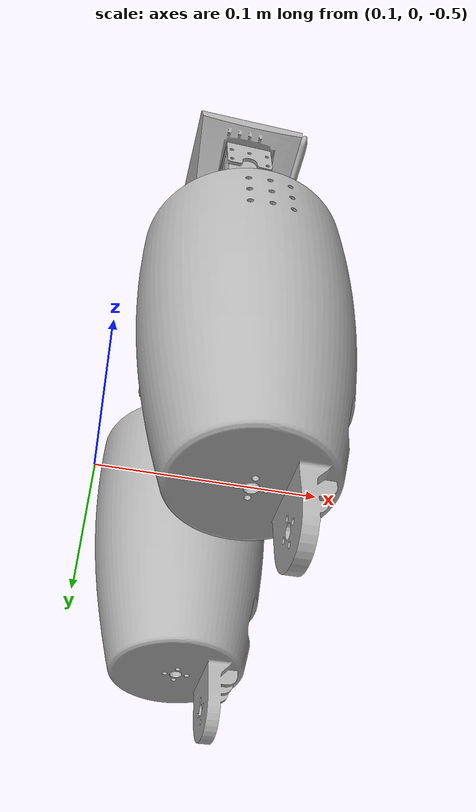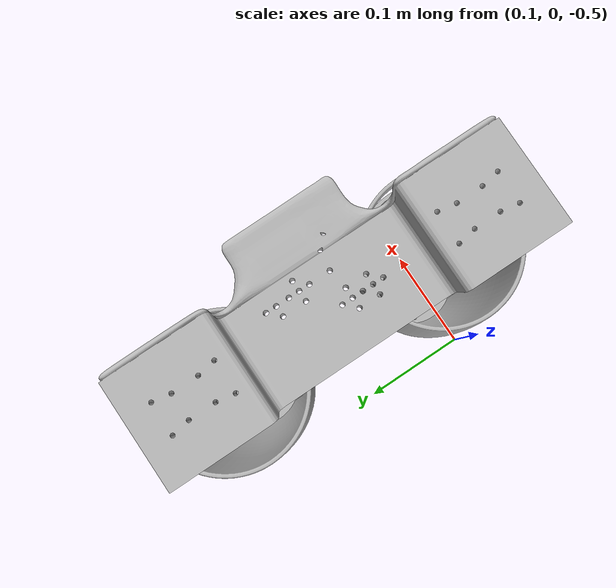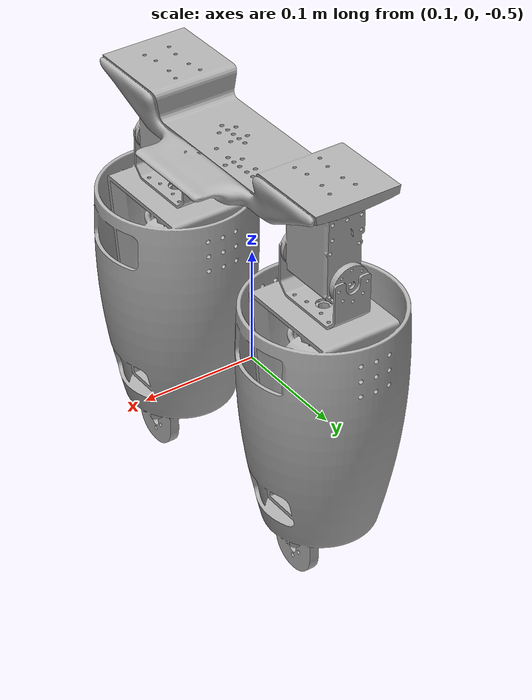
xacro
<?xml version="1.0" ?>
<robot name="v3" xmlns:xacro="http://www.ros.org/wiki/xacro">

<xacro:include filename="$(find v3_description)/urdf/materials.xacro" />
<xacro:include filename="$(find v3_description)/urdf/v3.trans" />
<xacro:include filename="$(find v3_description)/urdf/v3.gazebo" />
<link name="base_link">
  <inertial>
    <origin xyz="0.17909892481337406 0.09762976636632872 -0.22414750082071178" rpy="0 0 0"/>
    <mass value="0.2923278922778424"/>
    <inertia ixx="0.001682" iyy="0.000202" izz="0.001816" ixy="0.0" iyz="0.0" ixz="9e-06"/>
  </inertial>
  <visual>
    <origin xyz="0 0 0" rpy="0 0 0"/>
    <geometry>
      <mesh filename="package://v3_description/meshes/base_link.stl" scale="0.001 0.001 0.001"/>
    </geometry>
    <material name="silver"/>
  </visual>
  <collision>
    <origin xyz="0 0 0" rpy="0 0 0"/>
    <geometry>
      <mesh filename="package://v3_description/meshes/base_link.stl" scale="0.001 0.001 0.001"/>
    </geometry>
  </collision>
</link>

<link name="right_motor_1">
  <inertial>
    <origin xyz="-3.0853293208343846e-06 -0.0005645016256021207 -0.04017416319424169" rpy="0 0 0"/>
    <mass value="0.5369241363306354"/>
    <inertia ixx="0.000434" iyy="0.000311" izz="0.000222" ixy="-0.0" iyz="1e-06" ixz="-0.0"/>
  </inertial>
  <visual>
    <origin xyz="-0.173089 -0.189835 0.216581" rpy="0 0 0"/>
    <geometry>
      <mesh filename="package://v3_description/meshes/right_motor_1.stl" scale="0.001 0.001 0.001"/>
    </geometry>
    <material name="silver"/>
  </visual>
  <collision>
    <origin xyz="-0.173089 -0.189835 0.216581" rpy="0 0 0"/>
    <geometry>
      <mesh filename="package://v3_description/meshes/right_motor_1.stl" scale="0.001 0.001 0.001"/>
    </geometry>
  </collision>
</link>

<link name="left_motor_1">
  <inertial>
    <origin xyz="-3.0853293204458065e-06 -0.000564566738473324 -0.04017416319424108" rpy="0 0 0"/>
    <mass value="0.5369241363306354"/>
    <inertia ixx="0.000434" iyy="0.000311" izz="0.000222" ixy="-0.0" iyz="1e-06" ixz="-0.0"/>
  </inertial>
  <visual>
    <origin xyz="-0.173089 -0.005373 0.216581" rpy="0 0 0"/>
    <geometry>
      <mesh filename="package://v3_description/meshes/left_motor_1.stl" scale="0.001 0.001 0.001"/>
    </geometry>
    <material name="silver"/>
  </visual>
  <collision>
    <origin xyz="-0.173089 -0.005373 0.216581" rpy="0 0 0"/>
    <geometry>
      <mesh filename="package://v3_description/meshes/left_motor_1.stl" scale="0.001 0.001 0.001"/>
    </geometry>
  </collision>
</link>

<link name="left_support_1">
  <inertial>
    <origin xyz="1.9185127553278392e-07 -0.030699947805546385 -0.023078069478630503" rpy="0 0 0"/>
    <mass value="0.055292061964388156"/>
    <inertia ixx="4.5e-05" iyy="1.2e-05" izz="4.2e-05" ixy="0.0" iyz="0.0" ixz="0.0"/>
  </inertial>
  <visual>
    <origin xyz="-0.173089 -0.222335 0.276581" rpy="0 0 0"/>
    <geometry>
      <mesh filename="package://v3_description/meshes/left_support_1.stl" scale="0.001 0.001 0.001"/>
    </geometry>
    <material name="silver"/>
  </visual>
  <collision>
    <origin xyz="-0.173089 -0.222335 0.276581" rpy="0 0 0"/>
    <geometry>
      <mesh filename="package://v3_description/meshes/left_support_1.stl" scale="0.001 0.001 0.001"/>
    </geometry>
  </collision>
</link>

<link name="right_support_1">
  <inertial>
    <origin xyz="2.9213367592484385e-05 -0.030700012918507838 -0.023078051230753238" rpy="0 0 0"/>
    <mass value="0.055292061964388156"/>
    <inertia ixx="4.5e-05" iyy="1.2e-05" izz="4.2e-05" ixy="0.0" iyz="-0.0" ixz="0.0"/>
  </inertial>
  <visual>
    <origin xyz="-0.173089 -0.037873 0.276581" rpy="0 0 0"/>
    <geometry>
      <mesh filename="package://v3_description/meshes/right_support_1.stl" scale="0.001 0.001 0.001"/>
    </geometry>
    <material name="silver"/>
  </visual>
  <collision>
    <origin xyz="-0.173089 -0.037873 0.276581" rpy="0 0 0"/>
    <geometry>
      <mesh filename="package://v3_description/meshes/right_support_1.stl" scale="0.001 0.001 0.001"/>
    </geometry>
  </collision>
</link>

<link name="left_thigh_1">
  <inertial>
    <origin xyz="-0.0003807323150765429 -0.00025225945205693996 -0.10043314338718551" rpy="0 0 0"/>
    <mass value="0.7308676180663332"/>
    <inertia ixx="0.002702" iyy="0.002579" izz="0.001051" ixy="0.0" iyz="1e-06" ixz="6.1e-05"/>
  </inertial>
  <visual>
    <origin xyz="-0.173133 -0.007173 0.311081" rpy="0 0 0"/>
    <geometry>
      <mesh filename="package://v3_description/meshes/left_thigh_1.stl" scale="0.001 0.001 0.001"/>
    </geometry>
    <material name="silver"/>
  </visual>
  <collision>
    <origin xyz="-0.173133 -0.007173 0.311081" rpy="0 0 0"/>
    <geometry>
      <mesh filename="package://v3_description/meshes/left_thigh_1.stl" scale="0.001 0.001 0.001"/>
    </geometry>
  </collision>
</link>

<link name="right_thigh_1">
  <inertial>
    <origin xyz="-0.0005064348310377387 -0.0002522002577471094 -0.1004325910285071" rpy="0 0 0"/>
    <mass value="0.730867618264309"/>
    <inertia ixx="0.002702" iyy="0.002579" izz="0.001051" ixy="0.0" iyz="1e-06" ixz="5.9e-05"/>
  </inertial>
  <visual>
    <origin xyz="-0.173089 -0.191635 0.311081" rpy="0 0 0"/>
    <geometry>
      <mesh filename="package://v3_description/meshes/right_thigh_1.stl" scale="0.001 0.001 0.001"/>
    </geometry>
    <material name="silver"/>
  </visual>
  <collision>
    <origin xyz="-0.173089 -0.191635 0.311081" rpy="0 0 0"/>
    <geometry>
      <mesh filename="package://v3_description/meshes/right_thigh_1.stl" scale="0.001 0.001 0.001"/>
    </geometry>
  </collision>
</link>

<joint name="Rigid 1" type="fixed">
  <origin xyz="0.173089 0.189835 -0.216581" rpy="0 0 0"/>
  <parent link="base_link"/>
  <child link="right_motor_1"/>
</joint>

<joint name="Rigid 2" type="fixed">
  <origin xyz="0.173089 0.005373 -0.216581" rpy="0 0 0"/>
  <parent link="base_link"/>
  <child link="left_motor_1"/>
</joint>

<joint name="Revolute 5" type="continuous">
  <origin xyz="0.0 0.0325 -0.06" rpy="0 0 0"/>
  <parent link="right_motor_1"/>
  <child link="left_support_1"/>
  <axis xyz="0.0 -1.0 0.0"/>
</joint>

<joint name="Revolute 6" type="continuous">
  <origin xyz="0.0 0.0325 -0.06" rpy="0 0 0"/>
  <parent link="left_motor_1"/>
  <child link="right_support_1"/>
  <axis xyz="0.0 -1.0 0.0"/>
</joint>

<joint name="Rigid 7" type="fixed">
  <origin xyz="4.4e-05 -0.0307 -0.0345" rpy="0 0 0"/>
  <parent link="right_support_1"/>
  <child link="left_thigh_1"/>
</joint>

<joint name="Rigid 8" type="fixed">
  <origin xyz="0.0 -0.0307 -0.0345" rpy="0 0 0"/>
  <parent link="left_support_1"/>
  <child link="right_thigh_1"/>
</joint>

</robot>

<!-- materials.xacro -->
<robot name="v3" xmlns:xacro="http://www.ros.org/wiki/xacro" >

<material name="silver">
  <color rgba="0.700 0.700 0.700 1.000"/>
</material>

</robot>

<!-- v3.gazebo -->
<robot name="v3" xmlns:xacro="http://www.ros.org/wiki/xacro" >

<xacro:property name="body_color" value="Gazebo/Silver" />

<gazebo>
  <plugin name="control" filename="libgazebo_ros_control.so"/>
</gazebo>
<gazebo reference="base_link">
  <material>${body_color}</material>
  <mu1>0.2</mu1>
  <mu2>0.2</mu2>
  <selfCollide>true</selfCollide>
  <gravity>true</gravity>
</gazebo>

<gazebo reference="right_motor_1">
  <material>${body_color}</material>
  <mu1>0.2</mu1>
  <mu2>0.2</mu2>
  <selfCollide>true</selfCollide>
</gazebo>

<gazebo reference="left_motor_1">
  <material>${body_color}</material>
  <mu1>0.2</mu1>
  <mu2>0.2</mu2>
  <selfCollide>true</selfCollide>
</gazebo>

<gazebo reference="left_support_1">
  <material>${body_color}</material>
  <mu1>0.2</mu1>
  <mu2>0.2</mu2>
  <selfCollide>true</selfCollide>
</gazebo>

<gazebo reference="right_support_1">
  <material>${body_color}</material>
  <mu1>0.2</mu1>
  <mu2>0.2</mu2>
  <selfCollide>true</selfCollide>
</gazebo>

<gazebo reference="left_thigh_1">
  <material>${body_color}</material>
  <mu1>0.2</mu1>
  <mu2>0.2</mu2>
  <selfCollide>true</selfCollide>
</gazebo>

<gazebo reference="right_thigh_1">
  <material>${body_color}</material>
  <mu1>0.2</mu1>
  <mu2>0.2</mu2>
  <selfCollide>true</selfCollide>
</gazebo>

</robot>
